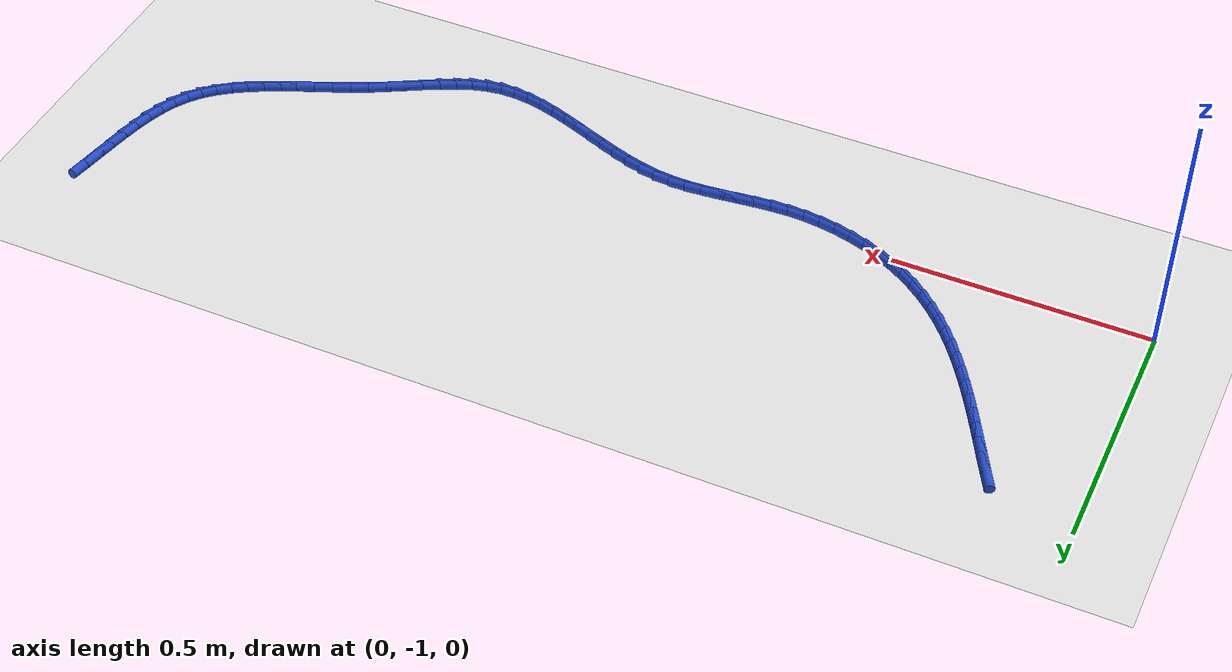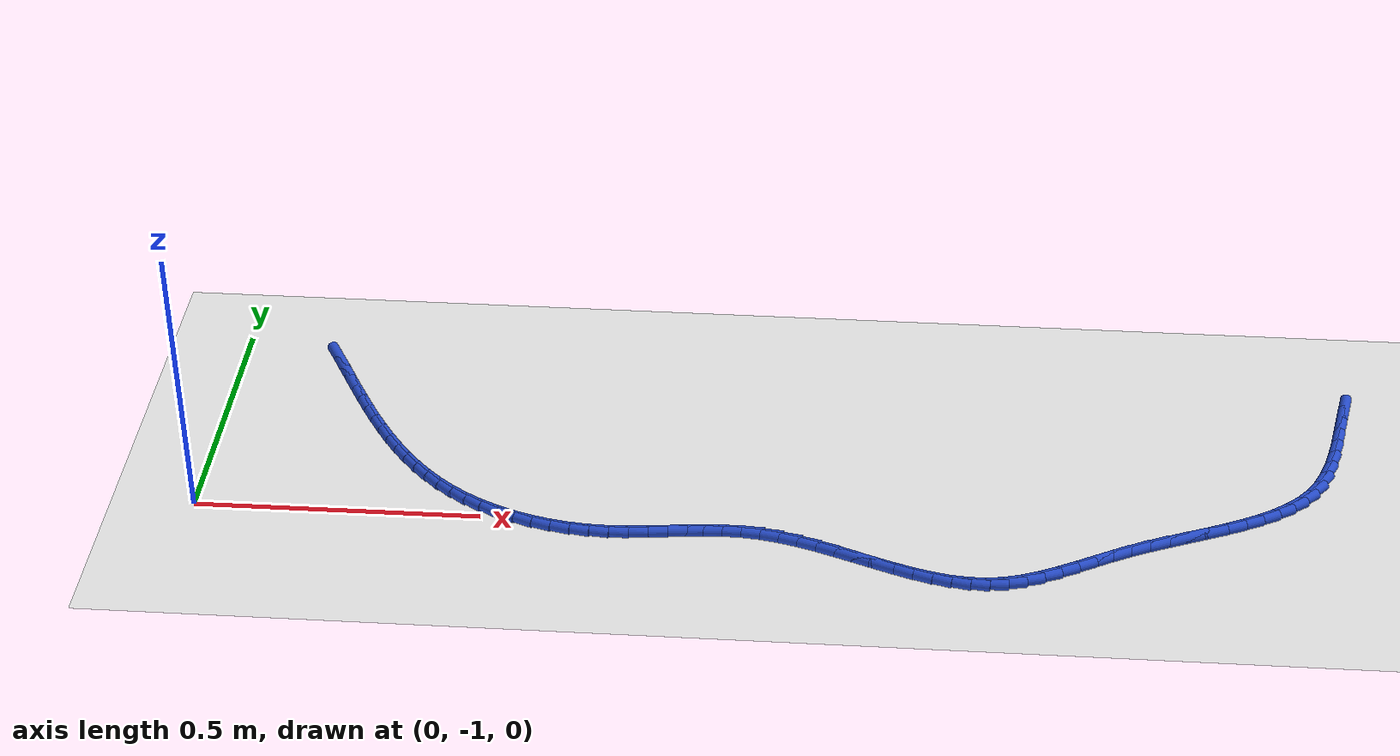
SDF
<sdf version="1.6">
 <world name="default">
  <model name="ground_plane">
   <static>1</static>
   <link name="link">
    <collision name="collision">
     <geometry><plane><normal>0 0 1</normal><size>100 100</size></plane></geometry>
     <surface><friction><ode><mu>100</mu><mu2>50</mu2></ode></friction></surface>
    </collision>
    <visual name="visual">
     <cast_shadows>0</cast_shadows>
     <geometry><plane><normal>0 0 1</normal><size>100 100</size></plane></geometry>
     <material>
      <script><uri>file://media/materials/scripts/gazebo.material</uri><name>Gazebo/WhiteGlow</name></script>
     </material>
    </visual>
   </link>
  </model>
  <model name="line">
   <link name="link_122">
    <pose>2.001342612257167 -0.5962311121839374 0.01 0 1.57 1.3903458527604275</pose>
    <collision name="collision">
     <geometry><cylinder><radius>0.01</radius><length>0.08</length></cylinder></geometry>
    </collision>
    <visual name="visual">
     <material>
      <script><name>Gazebo/Blue</name><uri>file://media/materials/scripts/gazebo.material</uri></script>
     </material>
     <geometry><cylinder><radius>0.01</radius><length>0.08</length></cylinder></geometry>
    </visual>
   </link>
   <link name="link_123">
    <pose>1.9950690387686671 -0.6306191130658704 0.01 0 1.57 1.396766335321182</pose>
    <collision name="collision">
     <geometry><cylinder><radius>0.01</radius><length>0.08</length></cylinder></geometry>
    </collision>
    <visual name="visual">
     <material>
      <script><name>Gazebo/Blue</name><uri>file://media/materials/scripts/gazebo.material</uri></script>
     </material>
     <geometry><cylinder><radius>0.01</radius><length>0.08</length></cylinder></geometry>
    </visual>
   </link>
   <link name="link_124">
    <pose>1.9890441192161843 -0.6648889069420741 0.01 0 1.57 1.3862279942010143</pose>
    <collision name="collision">
     <geometry><cylinder><radius>0.01</radius><length>0.08</length></cylinder></geometry>
    </collision>
    <visual name="visual">
     <material>
      <script><name>Gazebo/Blue</name><uri>file://media/materials/scripts/gazebo.material</uri></script>
     </material>
     <geometry><cylinder><radius>0.01</radius><length>0.08</length></cylinder></geometry>
    </visual>
   </link>
   <link name="link_125">
    <pose>1.9827382027965175 -0.6986658204495219 0.01 0 1.57 1.3578281688381069</pose>
    <collision name="collision">
     <geometry><cylinder><radius>0.01</radius><length>0.08</length></cylinder></geometry>
    </collision>
    <visual name="visual">
     <material>
      <script><name>Gazebo/Blue</name><uri>file://media/materials/scripts/gazebo.material</uri></script>
     </material>
     <geometry><cylinder><radius>0.01</radius><length>0.08</length></cylinder></geometry>
    </visual>
   </link>
   <link name="link_126">
    <pose>1.9756216387064656 -0.7315751802251836 0.01 0 1.57 1.3098315230164528</pose>
    <collision name="collision">
     <geometry><cylinder><radius>0.01</radius><length>0.08</length></cylinder></geometry>
    </collision>
    <visual name="visual">
     <material>
      <script><name>Gazebo/Blue</name><uri>file://media/materials/scripts/gazebo.material</uri></script>
     </material>
     <geometry><cylinder><radius>0.01</radius><length>0.08</length></cylinder></geometry>
    </visual>
   </link>
   <link name="link_127">
    <pose>1.96716477614283 -0.7632423129060327 0.01 0 1.57 1.2397882107973113</pose>
    <collision name="collision">
     <geometry><cylinder><radius>0.01</radius><length>0.08</length></cylinder></geometry>
    </collision>
    <visual name="visual">
     <material>
      <script><name>Gazebo/Blue</name><uri>file://media/materials/scripts/gazebo.material</uri></script>
     </material>
     <geometry><cylinder><radius>0.01</radius><length>0.08</length></cylinder></geometry>
    </visual>
   </link>
   <link name="link_128">
    <pose>1.9568379643024092 -0.7932925451290413 0.01 0 1.57 1.1449821006005845</pose>
    <collision name="collision">
     <geometry><cylinder><radius>0.01</radius><length>0.08</length></cylinder></geometry>
    </collision>
    <visual name="visual">
     <material>
      <script><name>Gazebo/Blue</name><uri>file://media/materials/scripts/gazebo.material</uri></script>
     </material>
     <geometry><cylinder><radius>0.01</radius><length>0.08</length></cylinder></geometry>
    </visual>
   </link>
   <link name="link_129">
    <pose>1.944111552382003 -0.8213512035311812 0.01 0 1.57 1.0235304026594017</pose>
    <collision name="collision">
     <geometry><cylinder><radius>0.01</radius><length>0.08</length></cylinder></geometry>
    </collision>
    <visual name="visual">
     <material>
      <script><name>Gazebo/Blue</name><uri>file://media/materials/scripts/gazebo.material</uri></script>
     </material>
     <geometry><cylinder><radius>0.01</radius><length>0.08</length></cylinder></geometry>
    </visual>
   </link>
   <link name="link_130">
    <pose>1.9284558895784119 -0.8470436147494251 0.01 0 1.57 0.8811891530363578</pose>
    <collision name="collision">
     <geometry><cylinder><radius>0.01</radius><length>0.08</length></cylinder></geometry>
    </collision>
    <visual name="visual">
     <material>
      <script><name>Gazebo/Blue</name><uri>file://media/materials/scripts/gazebo.material</uri></script>
     </material>
     <geometry><cylinder><radius>0.01</radius><length>0.08</length></cylinder></geometry>
    </visual>
   </link>
   <link name="link_131">
    <pose>1.9094539627592708 -0.8700853049938193 0.01 0 1.57 0.749073279238194</pose>
    <collision name="collision">
     <geometry><cylinder><radius>0.01</radius><length>0.08</length></cylinder></geometry>
    </collision>
    <visual name="visual">
     <material>
      <script><name>Gazebo/Blue</name><uri>file://media/materials/scripts/gazebo.material</uri></script>
     </material>
     <geometry><cylinder><radius>0.01</radius><length>0.08</length></cylinder></geometry>
    </visual>
   </link>
   <link name="link_132">
    <pose>1.8873024638849003 -0.8906832518418162 0.01 0 1.57 0.6397748678084795</pose>
    <collision name="collision">
     <geometry><cylinder><radius>0.01</radius><length>0.08</length></cylinder></geometry>
    </collision>
    <visual name="visual">
     <material>
      <script><name>Gazebo/Blue</name><uri>file://media/materials/scripts/gazebo.material</uri></script>
     </material>
     <geometry><cylinder><radius>0.01</radius><length>0.08</length></cylinder></geometry>
    </visual>
   </link>
   <link name="link_133">
    <pose>1.8624060773831774 -0.9092109919947979 0.01 0 1.57 0.553525718419027</pose>
    <collision name="collision">
     <geometry><cylinder><radius>0.01</radius><length>0.08</length></cylinder></geometry>
    </collision>
    <visual name="visual">
     <material>
      <script><name>Gazebo/Blue</name><uri>file://media/materials/scripts/gazebo.material</uri></script>
     </material>
     <geometry><cylinder><radius>0.01</radius><length>0.08</length></cylinder></geometry>
    </visual>
   </link>
   <link name="link_134">
    <pose>1.8351696548976661 -0.9260421960594719 0.01 0 1.57 0.48862591407132816</pose>
    <collision name="collision">
     <geometry><cylinder><radius>0.01</radius><length>0.08</length></cylinder></geometry>
    </collision>
    <visual name="visual">
     <material>
      <script><name>Gazebo/Blue</name><uri>file://media/materials/scripts/gazebo.material</uri></script>
     </material>
     <geometry><cylinder><radius>0.01</radius><length>0.08</length></cylinder></geometry>
    </visual>
   </link>
   <link name="link_135">
    <pose>1.8059980480719295 -0.9415505346425437 0.01 0 1.57 0.4428029575286789</pose>
    <collision name="collision">
     <geometry><cylinder><radius>0.01</radius><length>0.08</length></cylinder></geometry>
    </collision>
    <visual name="visual">
     <material>
      <script><name>Gazebo/Blue</name><uri>file://media/materials/scripts/gazebo.material</uri></script>
     </material>
     <geometry><cylinder><radius>0.01</radius><length>0.08</length></cylinder></geometry>
    </visual>
   </link>
   <link name="link_136">
    <pose>1.775296108549532 -0.9561096783507195 0.01 0 1.57 0.4139685518748146</pose>
    <collision name="collision">
     <geometry><cylinder><radius>0.01</radius><length>0.08</length></cylinder></geometry>
    </collision>
    <visual name="visual">
     <material>
      <script><name>Gazebo/Blue</name><uri>file://media/materials/scripts/gazebo.material</uri></script>
     </material>
     <geometry><cylinder><radius>0.01</radius><length>0.08</length></cylinder></geometry>
    </visual>
   </link>
   <link name="link_137">
    <pose>1.7434686879740369 -0.9700932977907054 0.01 0 1.57 0.4005386585146003</pose>
    <collision name="collision">
     <geometry><cylinder><radius>0.01</radius><length>0.08</length></cylinder></geometry>
    </collision>
    <visual name="visual">
     <material>
      <script><name>Gazebo/Blue</name><uri>file://media/materials/scripts/gazebo.material</uri></script>
     </material>
     <geometry><cylinder><radius>0.01</radius><length>0.08</length></cylinder></geometry>
    </visual>
   </link>
   <link name="link_138">
    <pose>1.710920637989008 -0.983875063569208 0.01 0 1.57 0.4015215203887412</pose>
    <collision name="collision">
     <geometry><cylinder><radius>0.01</radius><length>0.08</length></cylinder></geometry>
    </collision>
    <visual name="visual">
     <material>
      <script><name>Gazebo/Blue</name><uri>file://media/materials/scripts/gazebo.material</uri></script>
     </material>
     <geometry><cylinder><radius>0.01</radius><length>0.08</length></cylinder></geometry>
    </visual>
   </link>
   <link name="link_139">
    <pose>1.6780568102380098 -0.9978286462929323 0.01 0 1.57 0.4165035487182162</pose>
    <collision name="collision">
     <geometry><cylinder><radius>0.01</radius><length>0.08</length></cylinder></geometry>
    </collision>
    <visual name="visual">
     <material>
      <script><name>Gazebo/Blue</name><uri>file://media/materials/scripts/gazebo.material</uri></script>
     </material>
     <geometry><cylinder><radius>0.01</radius><length>0.08</length></cylinder></geometry>
    </visual>
   </link>
   <link name="link_140">
    <pose>1.6452820563646056 -1.012327716568585 0.01 0 1.57 0.4455903875848305</pose>
    <collision name="collision">
     <geometry><cylinder><radius>0.01</radius><length>0.08</length></cylinder></geometry>
    </collision>
    <visual name="visual">
     <material>
      <script><name>Gazebo/Blue</name><uri>file://media/materials/scripts/gazebo.material</uri></script>
     </material>
     <geometry><cylinder><radius>0.01</radius><length>0.08</length></cylinder></geometry>
    </visual>
   </link>
   <link name="link_141">
    <pose>1.6130012280123593 -1.0277459450028719 0.01 0 1.57 0.4839576707132134</pose>
    <collision name="collision">
     <geometry><cylinder><radius>0.01</radius><length>0.08</length></cylinder></geometry>
    </collision>
    <visual name="visual">
     <material>
      <script><name>Gazebo/Blue</name><uri>file://media/materials/scripts/gazebo.material</uri></script>
     </material>
     <geometry><cylinder><radius>0.01</radius><length>0.08</length></cylinder></geometry>
    </visual>
   </link>
   <link name="link_142">
    <pose>1.5815327051236479 -1.0442874243170732 0.01 0 1.57 0.5078225578851494</pose>
    <collision name="collision">
     <geometry><cylinder><radius>0.01</radius><length>0.08</length></cylinder></geometry>
    </collision>
    <visual name="visual">
     <material>
      <script><name>Gazebo/Blue</name><uri>file://media/materials/scripts/gazebo.material</uri></script>
     </material>
     <geometry><cylinder><radius>0.01</radius><length>0.08</length></cylinder></geometry>
    </visual>
   </link>
   <link name="link_143">
    <pose>1.5508033368497531 -1.0613884242022564 0.01 0 1.57 0.5100358530088271</pose>
    <collision name="collision">
     <geometry><cylinder><radius>0.01</radius><length>0.08</length></cylinder></geometry>
    </collision>
    <visual name="visual">
     <material>
      <script><name>Gazebo/Blue</name><uri>file://media/materials/scripts/gazebo.material</uri></script>
     </material>
     <geometry><cylinder><radius>0.01</radius><length>0.08</length></cylinder></geometry>
    </visual>
   </link>
   <link name="link_144">
    <pose>1.5206292119066438 -1.0782680043241095 0.01 0 1.57 0.48949691939724654</pose>
    <collision name="collision">
     <geometry><cylinder><radius>0.01</radius><length>0.08</length></cylinder></geometry>
    </collision>
    <visual name="visual">
     <material>
      <script><name>Gazebo/Blue</name><uri>file://media/materials/scripts/gazebo.material</uri></script>
     </material>
     <geometry><cylinder><radius>0.01</radius><length>0.08</length></cylinder></geometry>
    </visual>
   </link>
   <link name="link_145">
    <pose>1.4908264121092816 -1.0941452108148992 0.01 0 1.57 0.44418001916704</pose>
    <collision name="collision">
     <geometry><cylinder><radius>0.01</radius><length>0.08</length></cylinder></geometry>
    </collision>
    <visual name="visual">
     <material>
      <script><name>Gazebo/Blue</name><uri>file://media/materials/scripts/gazebo.material</uri></script>
     </material>
     <geometry><cylinder><radius>0.01</radius><length>0.08</length></cylinder></geometry>
    </visual>
   </link>
   <link name="link_146">
    <pose>1.4612110192726298 -1.108239089806891 0.01 0 1.57 0.3712977090462093</pose>
    <collision name="collision">
     <geometry><cylinder><radius>0.01</radius><length>0.08</length></cylinder></geometry>
    </collision>
    <visual name="visual">
     <material>
      <script><name>Gazebo/Blue</name><uri>file://media/materials/scripts/gazebo.material</uri></script>
     </material>
     <geometry><cylinder><radius>0.01</radius><length>0.08</length></cylinder></geometry>
    </visual>
   </link>
   <link name="link_147">
    <pose>1.4315991152116498 -1.1197686874323503 0.01 0 1.57 0.26810002783524844</pose>
    <collision name="collision">
     <geometry><cylinder><radius>0.01</radius><length>0.08</length></cylinder></geometry>
    </collision>
    <visual name="visual">
     <material>
      <script><name>Gazebo/Blue</name><uri>file://media/materials/scripts/gazebo.material</uri></script>
     </material>
     <geometry><cylinder><radius>0.01</radius><length>0.08</length></cylinder></geometry>
    </visual>
   </link>
   <link name="link_148">
    <pose>1.4018067817413036 -1.1279530498235428 0.01 0 1.57 0.134702487430526</pose>
    <collision name="collision">
     <geometry><cylinder><radius>0.01</radius><length>0.08</length></cylinder></geometry>
    </collision>
    <visual name="visual">
     <material>
      <script><name>Gazebo/Blue</name><uri>file://media/materials/scripts/gazebo.material</uri></script>
     </material>
     <geometry><cylinder><radius>0.01</radius><length>0.08</length></cylinder></geometry>
    </visual>
   </link>
   <link name="link_149">
    <pose>1.37165458684654 -1.1320393705287457 0.01 0 1.57 -0.0033845972890788802</pose>
    <collision name="collision">
     <geometry><cylinder><radius>0.01</radius><length>0.08</length></cylinder></geometry>
    </collision>
    <visual name="visual">
     <material>
      <script><name>Gazebo/Blue</name><uri>file://media/materials/scripts/gazebo.material</uri></script>
     </material>
     <geometry><cylinder><radius>0.01</radius><length>0.08</length></cylinder></geometry>
    </visual>
   </link>
   <link name="link_150">
    <pose>1.341068450352019 -1.1319358483787834 0.01 0 1.57 -0.11936520780689518</pose>
    <collision name="collision">
     <geometry><cylinder><radius>0.01</radius><length>0.08</length></cylinder></geometry>
    </collision>
    <visual name="visual">
     <material>
      <script><name>Gazebo/Blue</name><uri>file://media/materials/scripts/gazebo.material</uri></script>
     </material>
     <geometry><cylinder><radius>0.01</radius><length>0.08</length></cylinder></geometry>
    </visual>
   </link>
   <link name="link_151">
    <pose>1.310080863728498 -1.1282193408746655 0.01 0 1.57 -0.21123699735171084</pose>
    <collision name="collision">
     <geometry><cylinder><radius>0.01</radius><length>0.08</length></cylinder></geometry>
    </collision>
    <visual name="visual">
     <material>
      <script><name>Gazebo/Blue</name><uri>file://media/materials/scripts/gazebo.material</uri></script>
     </material>
     <geometry><cylinder><radius>0.01</radius><length>0.08</length></cylinder></geometry>
    </visual>
   </link>
   <link name="link_152">
    <pose>1.2787290485881393 -1.1214963836745304 0.01 0 1.57 -0.2803932385159081</pose>
    <collision name="collision">
     <geometry><cylinder><radius>0.01</radius><length>0.08</length></cylinder></geometry>
    </collision>
    <visual name="visual">
     <material>
      <script><name>Gazebo/Blue</name><uri>file://media/materials/scripts/gazebo.material</uri></script>
     </material>
     <geometry><cylinder><radius>0.01</radius><length>0.08</length></cylinder></geometry>
    </visual>
   </link>
   <link name="link_153">
    <pose>1.2470502265431005 -1.112373512436516 0.01 0 1.57 -0.3290536110986142</pose>
    <collision name="collision">
     <geometry><cylinder><radius>0.01</radius><length>0.08</length></cylinder></geometry>
    </collision>
    <visual name="visual">
     <material>
      <script><name>Gazebo/Blue</name><uri>file://media/materials/scripts/gazebo.material</uri></script>
     </material>
     <geometry><cylinder><radius>0.01</radius><length>0.08</length></cylinder></geometry>
    </visual>
   </link>
   <link name="link_154">
    <pose>1.215081619205542 -1.1014572628187598 0.01 0 1.57 -0.35931891016359624</pose>
    <collision name="collision">
     <geometry><cylinder><radius>0.01</radius><length>0.08</length></cylinder></geometry>
    </collision>
    <visual name="visual">
     <material>
      <script><name>Gazebo/Blue</name><uri>file://media/materials/scripts/gazebo.material</uri></script>
     </material>
     <geometry><cylinder><radius>0.01</radius><length>0.08</length></cylinder></geometry>
    </visual>
   </link>
   <link name="link_155">
    <pose>1.182860448187623 -1.0893541704794005 0.01 0 1.57 -0.3727430881619935</pose>
    <collision name="collision">
     <geometry><cylinder><radius>0.01</radius><length>0.08</length></cylinder></geometry>
    </collision>
    <visual name="visual">
     <material>
      <script><name>Gazebo/Blue</name><uri>file://media/materials/scripts/gazebo.material</uri></script>
     </material>
     <geometry><cylinder><radius>0.01</radius><length>0.08</length></cylinder></geometry>
    </visual>
   </link>
   <link name="link_156">
    <pose>1.1504239351015029 -1.0766707710765755 0.01 0 1.57 -0.3701907032382105</pose>
    <collision name="collision">
     <geometry><cylinder><radius>0.01</radius><length>0.08</length></cylinder></geometry>
    </collision>
    <visual name="visual">
     <material>
      <script><name>Gazebo/Blue</name><uri>file://media/materials/scripts/gazebo.material</uri></script>
     </material>
     <geometry><cylinder><radius>0.01</radius><length>0.08</length></cylinder></geometry>
    </visual>
   </link>
   <link name="link_157">
    <pose>1.1178093015593398 -1.064013600268422 0.01 0 1.57 -0.3518226999836894</pose>
    <collision name="collision">
     <geometry><cylinder><radius>0.01</radius><length>0.08</length></cylinder></geometry>
    </collision>
    <visual name="visual">
     <material>
      <script><name>Gazebo/Blue</name><uri>file://media/materials/scripts/gazebo.material</uri></script>
     </material>
     <geometry><cylinder><radius>0.01</radius><length>0.08</length></cylinder></geometry>
    </visual>
   </link>
   <link name="link_158">
    <pose>1.0850537691732955 -1.0519891937130794 0.01 0 1.57 -0.317143078946963</pose>
    <collision name="collision">
     <geometry><cylinder><radius>0.01</radius><length>0.08</length></cylinder></geometry>
    </collision>
    <visual name="visual">
     <material>
      <script><name>Gazebo/Blue</name><uri>file://media/materials/scripts/gazebo.material</uri></script>
     </material>
     <geometry><cylinder><radius>0.01</radius><length>0.08</length></cylinder></geometry>
    </visual>
   </link>
   <link name="link_159">
    <pose>1.0521945595555289 -1.041204087068685 0.01 0 1.57 -0.2651080554753769</pose>
    <collision name="collision">
     <geometry><cylinder><radius>0.01</radius><length>0.08</length></cylinder></geometry>
    </collision>
    <visual name="visual">
     <material>
      <script><name>Gazebo/Blue</name><uri>file://media/materials/scripts/gazebo.material</uri></script>
     </material>
     <geometry><cylinder><radius>0.01</radius><length>0.08</length></cylinder></geometry>
    </visual>
   </link>
   <link name="link_160">
    <pose>1.0192688943181987 -1.0322648159933765 0.01 0 1.57 -0.19435693926992034</pose>
    <collision name="collision">
     <geometry><cylinder><radius>0.01</radius><length>0.08</length></cylinder></geometry>
    </collision>
    <visual name="visual">
     <material>
      <script><name>Gazebo/Blue</name><uri>file://media/materials/scripts/gazebo.material</uri></script>
     </material>
     <geometry><cylinder><radius>0.01</radius><length>0.08</length></cylinder></geometry>
    </visual>
   </link>
   <link name="link_161">
    <pose>0.986313995073465 -1.0257779161452922 0.01 0 1.57 -0.10504484219172666</pose>
    <collision name="collision">
     <geometry><cylinder><radius>0.01</radius><length>0.08</length></cylinder></geometry>
    </collision>
    <visual name="visual">
     <material>
      <script><name>Gazebo/Blue</name><uri>file://media/materials/scripts/gazebo.material</uri></script>
     </material>
     <geometry><cylinder><radius>0.01</radius><length>0.08</length></cylinder></geometry>
    </visual>
   </link>
   <link name="link_162">
    <pose>0.9533651121642364 -1.0223040190517916 0.01 0 1.57 -0.018707043438933306</pose>
    <collision name="collision">
     <geometry><cylinder><radius>0.01</radius><length>0.08</length></cylinder></geometry>
    </collision>
    <visual name="visual">
     <material>
      <script><name>Gazebo/Blue</name><uri>file://media/materials/scripts/gazebo.material</uri></script>
     </material>
     <geometry><cylinder><radius>0.01</radius><length>0.08</length></cylinder></geometry>
    </visual>
   </link>
   <link name="link_163">
    <pose>0.9204267491134619 -1.0216877677752911 0.01 0 1.57 0.04608839262753677</pose>
    <collision name="collision">
     <geometry><cylinder><radius>0.01</radius><length>0.08</length></cylinder></geometry>
    </collision>
    <visual name="visual">
     <material>
      <script><name>Gazebo/Blue</name><uri>file://media/materials/scripts/gazebo.material</uri></script>
     </material>
     <geometry><cylinder><radius>0.01</radius><length>0.08</length></cylinder></geometry>
    </visual>
   </link>
   <link name="link_164">
    <pose>0.8874790839980099 -1.0232073487879236 0.01 0 1.57 0.08825837757708857</pose>
    <collision name="collision">
     <geometry><cylinder><radius>0.01</radius><length>0.08</length></cylinder></geometry>
    </collision>
    <visual name="visual">
     <material>
      <script><name>Gazebo/Blue</name><uri>file://media/materials/scripts/gazebo.material</uri></script>
     </material>
     <geometry><cylinder><radius>0.01</radius><length>0.08</length></cylinder></geometry>
    </visual>
   </link>
   <link name="link_165">
    <pose>0.854501630034697 -1.0261254662410464 0.01 0 1.57 0.107953009109686</pose>
    <collision name="collision">
     <geometry><cylinder><radius>0.01</radius><length>0.08</length></cylinder></geometry>
    </collision>
    <visual name="visual">
     <material>
      <script><name>Gazebo/Blue</name><uri>file://media/materials/scripts/gazebo.material</uri></script>
     </material>
     <geometry><cylinder><radius>0.01</radius><length>0.08</length></cylinder></geometry>
    </visual>
   </link>
   <link name="link_166">
    <pose>0.821473900440338 -1.029704824286019 0.01 0 1.57 0.1054521574742702</pose>
    <collision name="collision">
     <geometry><cylinder><radius>0.01</radius><length>0.08</length></cylinder></geometry>
    </collision>
    <visual name="visual">
     <material>
      <script><name>Gazebo/Blue</name><uri>file://media/materials/scripts/gazebo.material</uri></script>
     </material>
     <geometry><cylinder><radius>0.01</radius><length>0.08</length></cylinder></geometry>
    </visual>
   </link>
   <link name="link_167">
    <pose>0.7883754084317486 -1.0332081270741995 0.01 0 1.57 0.0808709208696169</pose>
    <collision name="collision">
     <geometry><cylinder><radius>0.01</radius><length>0.08</length></cylinder></geometry>
    </collision>
    <visual name="visual">
     <material>
      <script><name>Gazebo/Blue</name><uri>file://media/materials/scripts/gazebo.material</uri></script>
     </material>
     <geometry><cylinder><radius>0.01</radius><length>0.08</length></cylinder></geometry>
    </visual>
   </link>
   <link name="link_168">
    <pose>0.7551856672257441 -1.035898078756947 0.01 0 1.57 0.0341984991990946</pose>
    <collision name="collision">
     <geometry><cylinder><radius>0.01</radius><length>0.08</length></cylinder></geometry>
    </collision>
    <visual name="visual">
     <material>
      <script><name>Gazebo/Blue</name><uri>file://media/materials/scripts/gazebo.material</uri></script>
     </material>
     <geometry><cylinder><radius>0.01</radius><length>0.08</length></cylinder></geometry>
    </visual>
   </link>
   <link name="link_169">
    <pose>0.72188419003914 -1.0370373834856192 0.01 0 1.57 -0.03327782857558497</pose>
    <collision name="collision">
     <geometry><cylinder><radius>0.01</radius><length>0.08</length></cylinder></geometry>
    </collision>
    <visual name="visual">
     <material>
      <script><name>Gazebo/Blue</name><uri>file://media/materials/scripts/gazebo.material</uri></script>
     </material>
     <geometry><cylinder><radius>0.01</radius><length>0.08</length></cylinder></geometry>
    </visual>
   </link>
   <link name="link_170">
    <pose>0.6884614063734097 -1.0359247350691818 0.01 0 1.57 -0.10748569274588807</pose>
    <collision name="collision">
     <geometry><cylinder><radius>0.01</radius><length>0.08</length></cylinder></geometry>
    </collision>
    <visual name="visual">
     <material>
      <script><name>Gazebo/Blue</name><uri>file://media/materials/scripts/gazebo.material</uri></script>
     </material>
     <geometry><cylinder><radius>0.01</radius><length>0.08</length></cylinder></geometry>
    </visual>
   </link>
   <link name="link_171">
    <pose>0.6550474193337882 -1.032319314133588 0.01 0 1.57 -0.1795082823335587</pose>
    <collision name="collision">
     <geometry><cylinder><radius>0.01</radius><length>0.08</length></cylinder></geometry>
    </collision>
    <visual name="visual">
     <material>
      <script><name>Gazebo/Blue</name><uri>file://media/materials/scripts/gazebo.material</uri></script>
     </material>
     <geometry><cylinder><radius>0.01</radius><length>0.08</length></cylinder></geometry>
    </visual>
   </link>
   <link name="link_172">
    <pose>0.6218689043806639 -1.0262986885679417 0.01 0 1.57 -0.24995819140910272</pose>
    <collision name="collision">
     <geometry><cylinder><radius>0.01</radius><length>0.08</length></cylinder></geometry>
    </collision>
    <visual name="visual">
     <material>
      <script><name>Gazebo/Blue</name><uri>file://media/materials/scripts/gazebo.material</uri></script>
     </material>
     <geometry><cylinder><radius>0.01</radius><length>0.08</length></cylinder></geometry>
    </visual>
   </link>
   <link name="link_173">
    <pose>0.5891544633376703 -1.017946777245746 0.01 0 1.57 -0.3196511660445638</pose>
    <collision name="collision">
     <geometry><cylinder><radius>0.01</radius><length>0.08</length></cylinder></geometry>
    </collision>
    <visual name="visual">
     <material>
      <script><name>Gazebo/Blue</name><uri>file://media/materials/scripts/gazebo.material</uri></script>
     </material>
     <geometry><cylinder><radius>0.01</radius><length>0.08</length></cylinder></geometry>
    </visual>
   </link>
   <link name="link_174">
    <pose>0.5571326980284405 -1.007347499040503 0.01 0 1.57 -0.38941446802875695</pose>
    <collision name="collision">
     <geometry><cylinder><radius>0.01</radius><length>0.08</length></cylinder></geometry>
    </collision>
    <visual name="visual">
     <material>
      <script><name>Gazebo/Blue</name><uri>file://media/materials/scripts/gazebo.material</uri></script>
     </material>
     <geometry><cylinder><radius>0.01</radius><length>0.08</length></cylinder></geometry>
    </visual>
   </link>
   <link name="link_175">
    <pose>0.5260322102766071 -0.994584772825715 0.01 0 1.57 -0.46008747809611117</pose>
    <collision name="collision">
     <geometry><cylinder><radius>0.01</radius><length>0.08</length></cylinder></geometry>
    </collision>
    <visual name="visual">
     <material>
      <script><name>Gazebo/Blue</name><uri>file://media/materials/scripts/gazebo.material</uri></script>
     </material>
     <geometry><cylinder><radius>0.01</radius><length>0.08</length></cylinder></geometry>
    </visual>
   </link>
   <link name="link_176">
    <pose>0.4960816019058028 -0.9797425174748842 0.01 0 1.57 -0.5325227827558483</pose>
    <collision name="collision">
     <geometry><cylinder><radius>0.01</radius><length>0.08</length></cylinder></geometry>
    </collision>
    <visual name="visual">
     <material>
      <script><name>Gazebo/Blue</name><uri>file://media/materials/scripts/gazebo.material</uri></script>
     </material>
     <geometry><cylinder><radius>0.01</radius><length>0.08</length></cylinder></geometry>
    </visual>
   </link>
   <link name="link_177">
    <pose>0.46750947473966215 -0.9629046518615137 0.01 0 1.57 -0.6071250379056446</pose>
    <collision name="collision">
     <geometry><cylinder><radius>0.01</radius><length>0.08</length></cylinder></geometry>
    </collision>
    <visual name="visual">
     <material>
      <script><name>Gazebo/Blue</name><uri>file://media/materials/scripts/gazebo.material</uri></script>
     </material>
     <geometry><cylinder><radius>0.01</radius><length>0.08</length></cylinder></geometry>
    </visual>
   </link>
   <link name="link_178">
    <pose>0.44052368982653917 -0.9441590280035221 0.01 0 1.57 -0.6796679332932389</pose>
    <collision name="collision">
     <geometry><cylinder><radius>0.01</radius><length>0.08</length></cylinder></geometry>
    </collision>
    <visual name="visual">
     <material>
      <script><name>Gazebo/Blue</name><uri>file://media/materials/scripts/gazebo.material</uri></script>
     </material>
     <geometry><cylinder><radius>0.01</radius><length>0.08</length></cylinder></geometry>
    </visual>
   </link>
   <link name="link_179">
    <pose>0.4151237355220129 -0.923633012347882 0.01 0 1.57 -0.7468246686328377</pose>
    <collision name="collision">
     <geometry><cylinder><radius>0.01</radius><length>0.08</length></cylinder></geometry>
    </collision>
    <visual name="visual">
     <material>
      <script><name>Gazebo/Blue</name><uri>file://media/materials/scripts/gazebo.material</uri></script>
     </material>
     <geometry><cylinder><radius>0.01</radius><length>0.08</length></cylinder></geometry>
    </visual>
   </link>
   <link name="link_180">
    <pose>0.39118873774221646 -0.901476796084148 0.01 0 1.57 -0.8079686852646707</pose>
    <collision name="collision">
     <geometry><cylinder><radius>0.01</radius><length>0.08</length></cylinder></geometry>
    </collision>
    <visual name="visual">
     <material>
      <script><name>Gazebo/Blue</name><uri>file://media/materials/scripts/gazebo.material</uri></script>
     </material>
     <geometry><cylinder><radius>0.01</radius><length>0.08</length></cylinder></geometry>
    </visual>
   </link>
   <link name="link_181">
    <pose>0.3685963633450769 -0.8778408470880926 0.01 0 1.57 -0.8627862288350491</pose>
    <collision name="collision">
     <geometry><cylinder><radius>0.01</radius><length>0.08</length></cylinder></geometry>
    </collision>
    <visual name="visual">
     <material>
      <script><name>Gazebo/Blue</name><uri>file://media/materials/scripts/gazebo.material</uri></script>
     </material>
     <geometry><cylinder><radius>0.01</radius><length>0.08</length></cylinder></geometry>
    </visual>
   </link>
   <link name="link_182">
    <pose>0.347224279188521 -0.8528756332354879 0.01 0 1.57 -0.9111871729204295</pose>
    <collision name="collision">
     <geometry><cylinder><radius>0.01</radius><length>0.08</length></cylinder></geometry>
    </collision>
    <visual name="visual">
     <material>
      <script><name>Gazebo/Blue</name><uri>file://media/materials/scripts/gazebo.material</uri></script>
     </material>
     <geometry><cylinder><radius>0.01</radius><length>0.08</length></cylinder></geometry>
    </visual>
   </link>
   <link name="link_183">
    <pose>0.3269501521304753 -0.8267316224021048 0.01 0 1.57 -0.9532401756201432</pose>
    <collision name="collision">
     <geometry><cylinder><radius>0.01</radius><length>0.08</length></cylinder></geometry>
    </collision>
    <visual name="visual">
     <material>
      <script><name>Gazebo/Blue</name><uri>file://media/materials/scripts/gazebo.material</uri></script>
     </material>
     <geometry><cylinder><radius>0.01</radius><length>0.08</length></cylinder></geometry>
    </visual>
   </link>
   <link name="link_184">
    <pose>0.30765164902886755 -0.7995592824637169 0.01 0 1.57 -0.9891118726335821</pose>
    <collision name="collision">
     <geometry><cylinder><radius>0.01</radius><length>0.08</length></cylinder></geometry>
    </collision>
    <visual name="visual">
     <material>
      <script><name>Gazebo/Blue</name><uri>file://media/materials/scripts/gazebo.material</uri></script>
     </material>
     <geometry><cylinder><radius>0.01</radius><length>0.08</length></cylinder></geometry>
    </visual>
   </link>
   <link name="link_185">
    <pose>0.2892064367416242 -0.7715090812960955 0.01 0 1.57 -1.0190161969683507</pose>
    <collision name="collision">
     <geometry><cylinder><radius>0.01</radius><length>0.08</length></cylinder></geometry>
    </collision>
    <visual name="visual">
     <material>
      <script><name>Gazebo/Blue</name><uri>file://media/materials/scripts/gazebo.material</uri></script>
     </material>
     <geometry><cylinder><radius>0.01</radius><length>0.08</length></cylinder></geometry>
    </visual>
   </link>
   <link name="link_186">
    <pose>0.27149218212667225 -0.7427314867750123 0.01 0 1.57 -1.043175441588428</pose>
    <collision name="collision">
     <geometry><cylinder><radius>0.01</radius><length>0.08</length></cylinder></geometry>
    </collision>
    <visual name="visual">
     <material>
      <script><name>Gazebo/Blue</name><uri>file://media/materials/scripts/gazebo.material</uri></script>
     </material>
     <geometry><cylinder><radius>0.01</radius><length>0.08</length></cylinder></geometry>
    </visual>
   </link>
   <link name="link_187">
    <pose>0.2543865520419385 -0.7133769667762395 0.01 0 1.57 -1.061792066565423</pose>
    <collision name="collision">
     <geometry><cylinder><radius>0.01</radius><length>0.08</length></cylinder></geometry>
    </collision>
    <visual name="visual">
     <material>
      <script><name>Gazebo/Blue</name><uri>file://media/materials/scripts/gazebo.material</uri></script>
     </material>
     <geometry><cylinder><radius>0.01</radius><length>0.08</length></cylinder></geometry>
    </visual>
   </link>
   <link name="link_188">
    <pose>0.23776721334535 -0.6835959891755491 0.01 0 1.57 -1.0750291462058392</pose>
    <collision name="collision">
     <geometry><cylinder><radius>0.01</radius><length>0.08</length></cylinder></geometry>
    </collision>
    <visual name="visual">
     <material>
      <script><name>Gazebo/Blue</name><uri>file://media/materials/scripts/gazebo.material</uri></script>
     </material>
     <geometry><cylinder><radius>0.01</radius><length>0.08</length></cylinder></geometry>
    </visual>
   </link>
   <link name="link_189">
    <pose>0.2215118328948331 -0.6535390218487122 0.01 0 1.57 -1.082997194441731</pose>
    <collision name="collision">
     <geometry><cylinder><radius>0.01</radius><length>0.08</length></cylinder></geometry>
    </collision>
    <visual name="visual">
     <material>
      <script><name>Gazebo/Blue</name><uri>file://media/materials/scripts/gazebo.material</uri></script>
     </material>
     <geometry><cylinder><radius>0.01</radius><length>0.08</length></cylinder></geometry>
    </visual>
   </link>
   <link name="link_190">
    <pose>0.20549807754831553 -0.6233565326715022 0.01 0 1.57 -1.085745435608422</pose>
    <collision name="collision">
     <geometry><cylinder><radius>0.01</radius><length>0.08</length></cylinder></geometry>
    </collision>
    <visual name="visual">
     <material>
      <script><name>Gazebo/Blue</name><uri>file://media/materials/scripts/gazebo.material</uri></script>
     </material>
     <geometry><cylinder><radius>0.01</radius><length>0.08</length></cylinder></geometry>
    </visual>
   </link>
   <link name="link_191">
    <pose>0.1896036141637238 -0.5931989895196904 0.01 0 1.57 -1.0832561160133454</pose>
    <collision name="collision">
     <geometry><cylinder><radius>0.01</radius><length>0.08</length></cylinder></geometry>
    </collision>
    <visual name="visual">
     <material>
      <script><name>Gazebo/Blue</name><uri>file://media/materials/scripts/gazebo.material</uri></script>
     </material>
     <geometry><cylinder><radius>0.01</radius><length>0.08</length></cylinder></geometry>
    </visual>
   </link>
   <link name="link_192">
    <pose>0.17370610960091662 -0.5632168602672704 0.01 0 1.57 -1.0772854036147592</pose>
    <collision name="collision">
     <geometry><cylinder><radius>0.01</radius><length>0.08</length></cylinder></geometry>
    </collision>
    <visual name="visual">
     <material>
      <script><name>Gazebo/Blue</name><uri>file://media/materials/scripts/gazebo.material</uri></script>
     </material>
     <geometry><cylinder><radius>0.01</radius><length>0.08</length></cylinder></geometry>
    </visual>
   </link>
  </model>
 </world>
</sdf>
